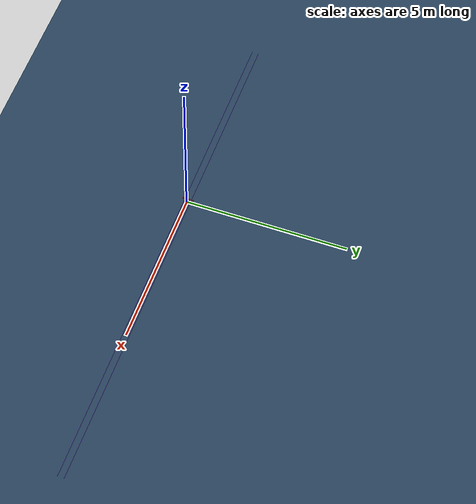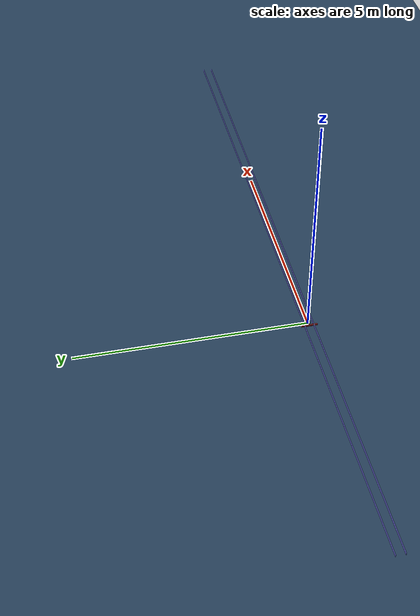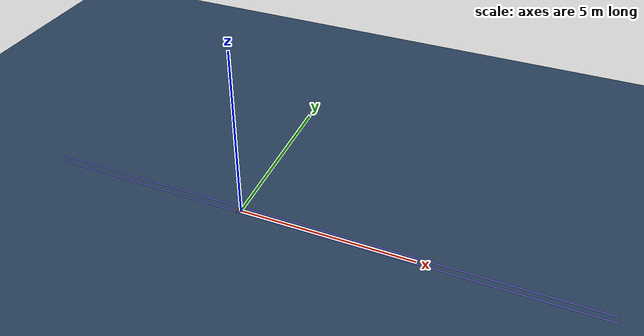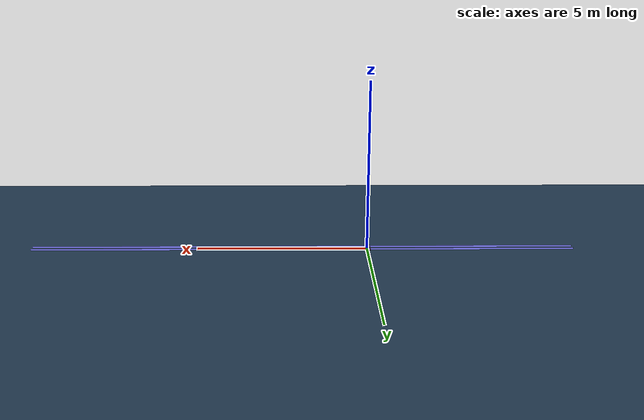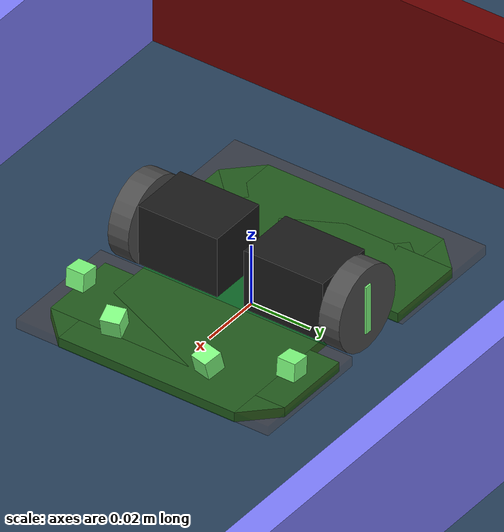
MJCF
<mujoco>
    <compiler angle="degree" coordinate="local" inertiafromgeom="true" />
    <option integrator="RK4" timestep="0.0001" />

    <asset>
        <texture type="skybox" builtin="gradient" rgb1="0.3 0.5 0.7" rgb2="0 0 0" width="512" height="3072"/>
        <texture type="2d" name="groundplane" builtin="checker" mark="edge" rgb1="0.2 0.3 0.4" rgb2="0.1 0.2 0.3" markrgb="0.8 0.8 0.8" width="300" height="300"/>
        <material name="groundplane" texture="groundplane" texuniform="true" texrepeat="5 5" reflectance="0.2"/>
    </asset>

    <worldbody>
        <geom type="plane" size="30 30 .01" material="groundplane"/>
      <light pos="0 0 1.5" dir="0 0 -1" directional="true"/>

        <body pos="0 0 2.8e-3">
            <freejoint />
            <body name="torso" >
            <geom name="mein_body1" type="box" size="0.05 0.03 0.0016" friction="0.0 0.0 0.0" rgba="0.05 0.4 0.15 1" pos="0 0 0.001" mass="4.65e-3"/>
            <geom name="mein_body_chip1" type="box" size="0.00707 0.00707 0.0016" friction="0.0 0.0 0.0" rgba="0.05 0.4 0.15 1" pos="0.04 0.03 0.001" euler="0 0 45" mass="4.65e-3"/>
            <geom name="mein_body_chip2" type="box" size="0.00707 0.00707 0.0016" friction="0.0 0.0 0.0" rgba="0.05 0.4 0.15 1" pos="0.04 -0.03 0.001" euler="0 0 45" mass="4.65e-3"/>
            <geom name="mein_body_chip3" type="box" size="0.00707 0.00707 0.0016" friction="0.0 0.0 0.0" rgba="0.05 0.4 0.15 1" pos="-0.04 0.03 0.001" euler="0 0 45" mass="4.65e-3"/>
            <geom name="mein_body_chip4" type="box" size="0.00707 0.00707 0.0016" friction="0.0 0.0 0.0" rgba="0.05 0.4 0.15 1" pos="-0.04 -0.03 0.001" euler="0 0 45" mass="4.65e-3"/>
            <geom name="mein_body4" type="box" size="0.013 0.04 0.0016" friction="0.0 0.0 0.0" rgba="0.05 0.4 0.15 1" pos="-0.027 0 0.001" mass="4.65e-3"/>
            <geom name="mein_body5" type="box" size="0.013 0.04 0.0016" friction="0.0 0.0 0.0" rgba="0.05 0.4 0.15 1" pos="0.027 0 0.001" mass="4.65e-3"/>
                <site name = "hit_box" type = "box" size = "0.02 0.043 0.0016" pos="0.032 0 0.003" rgba=".5 .2 0 .1"/> 接触判定領域（この中に入ってるgeomが接触すると，センサ値としてその値を取得できる）
                <site name = "hit_box2" type = "box" size = "0.02 0.043 0.0016" pos="-0.032 0 0.003" rgba=".5 .2 0 .1"/>
                <camera name="camera_name" mode="track" pos="-0.2 0 1" euler="0 -20 -90" fovy="60"/> トラッキングカメラを装着
            </body>

            <site name="sensor_left_front" type="box" size="0.003 0.003 0.003" pos="0.031 0.036 0.01" zaxis="1 0 0.08" rgba=".5 1 .5 1"/>
              <!-- zaxisの３つめ　0.1でちょい上向き -->
            <site name="sensor_left_side" type="box" size="0.003 0.003 0.003" pos="0.043 0.016 0.01" zaxis="0.25 1 0" rgba=".5 1 .5 1"/>
            <site name="sensor_right_front" type="box" size="0.003 0.003 0.003" pos="0.031 -0.036 0.01" zaxis="1 0 0.08" rgba=".5 1 .5 1"/>
            <site name="sensor_right_side" type="box" size="0.003 0.003 0.003" pos="0.043 -0.016 0.01" zaxis="0.25 -1 0" rgba=".5 1 .5 1"/>

             <body name="left wheel" pos="-0.0 0.036 0.0125" zaxis="0 1 0">
                <joint name="left wheel joint" type="hinge" axis="0 0 1" limited="false" damping='5.4e-5' />

                <geom type="cylinder" size="0.0135 0.0035" rgba=".3 .3 0.3 1" mass="1.0e-2"/>
                <site type="box" size = "0.0012 0.008 0.004" rgba=".5 1 .5 1"/>
            </body>

            <body name="right wheel" pos="-0.0 -0.036 0.0125" zaxis="0 1 0">
                <joint name="right wheel joint" type="hinge" axis="0 0 1" limited="false" damping='5.4e-5' />
                <geom type="cylinder" size="0.0135 0.0035" rgba=".3 .3 0.3 1" mass="1.0e-2"/>
                <site type="box" size = "0.0012 0.008 0.004" rgba=".5 1 .5 1"/>
            </body>

            <body name="motorbox1" pos="0 -0.018 0.0135" >
                <geom type="box" size="0.01 0.0135 0.01" rgba="0.1 0.1 0.1 1" mass="5.52e-2"/>
            </body>

            <body name="motorbox2" pos="0 0.018 0.0135">
                <geom type="box" size="0.01 0.0135 0.01" rgba="0.1 0.1 0.1 1" mass="5.52e-2"/>
            </body>

        </body>
    座標軸表示

        <body name="back_wall" pos="-0.09 0 0.025">
                <geom type="box" size="0.005 0.18 0.025" rgba="0.4 0 0 1" />
            </body>

<!-- かべかべかべｎ --><!-- かべかべかべｎ --><!-- かべかべかべｎ --><!-- かべかべかべｎ --><!-- かべかべかべｎ -->

        <body name="maze_wall2" pos="1.9 -0.1 0.025">
                <geom type="box" size="8 0.005 0.025" rgba=".5 .5 1 1" />
            </body>
            <body name="long_wall2" pos="1.9 0.1 0.025">
                <geom type="box" size="8 0.005 0.025" rgba=".5 .5 1 1" />
            </body>
<!-- かべかべかべｎ --><!-- かべかべかべｎ --><!-- かべかべかべｎ --><!-- かべかべかべｎ --><!-- かべかべかべｎ -->

    </worldbody>
    <actuator>
        <motor name="right" joint="right wheel joint" gear="0.3e-2" ctrllimited="true" ctrlrange="-3 3"/> ctrlrangeで入力の値の範囲を決められる
        <motor name="left" joint="left wheel joint" gear="0.3e-2" ctrllimited="true" ctrlrange="-3 3"/>
    </actuator>

    <sensor>
        <rangefinder name="LF" site="sensor_left_front" cutoff="0.15"/>
        <rangefinder name="LS" site="sensor_left_side" cutoff="0.15"/>
        <rangefinder name="RF" site="sensor_right_front" cutoff="0.15"/>
        <rangefinder name="RS" site="sensor_right_side" cutoff="0.15"/>
        <touch name = "HB" site = "hit_box"/>
        <touch name = "HB2" site = "hit_box2"/>
    </sensor>
</mujoco>
